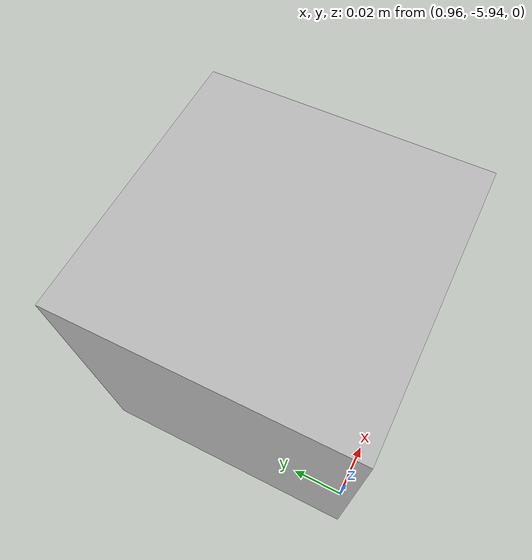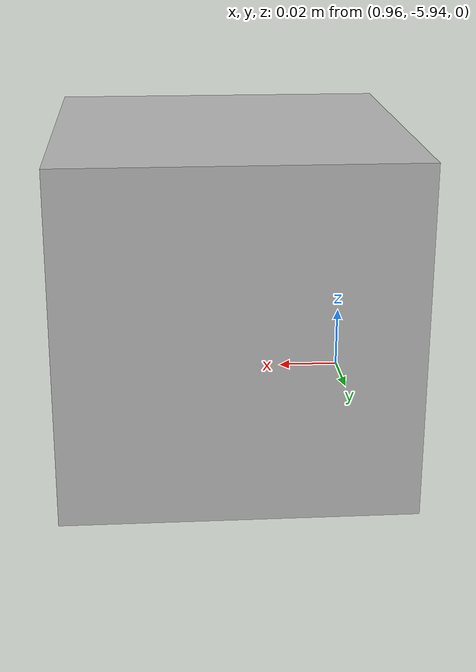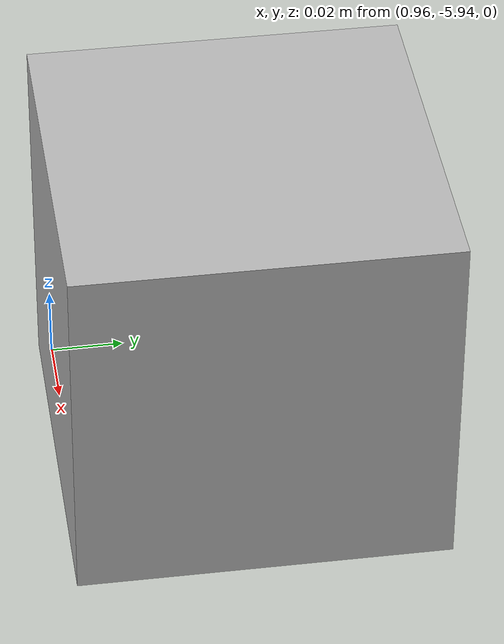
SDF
<?xml version="1.0" ?>
<sdf version="1.9">
  <model name="pacote E">
    <static>true</static> <!-- Define como false para que o objeto tenha física -->
    <link name="link_00">
      <pose>1 -5.9 0.02 -11 0 0</pose>

      <inertial>
        <mass>10.0</mass> <!-- Define a massa do objeto -->
         <inertia> <!-- Momento de inércia ajustado -->
          <ixx>0.4</ixx>
          <ixy>0.0</ixy> <!-- Componentes cruzadas de inércia zeradas -->
          <ixz>0.0</ixz>
          <iyy>0.4</iyy>
          <iyz>0.0</iyz>
          <izz>0.4</izz>
        </inertia>
      </inertial>
      <gravity>true</gravity>
      <collision name="collision">
        <geometry>
          <mesh>
            <uri>model://Pacote_E/meshes/pacote.obj</uri>
            <scale>1 1 1</scale>
          </mesh>
        </geometry>
         <surface>
          <friction>
            <ode>
              <mu>1.0</mu> <!-- Coeficiente de fricção -->
              <mu2>1.0</mu2>
            </ode>
          </friction>
        </surface>
      </collision>

      <visual name="visual">
        <geometry>
          <mesh>
            <uri>model://Pacote_E/meshes/pacote.obj</uri>
            <scale>1 1 1</scale>
          </mesh>
        </geometry>
      </visual>
    </link>
  </model>
</sdf>
